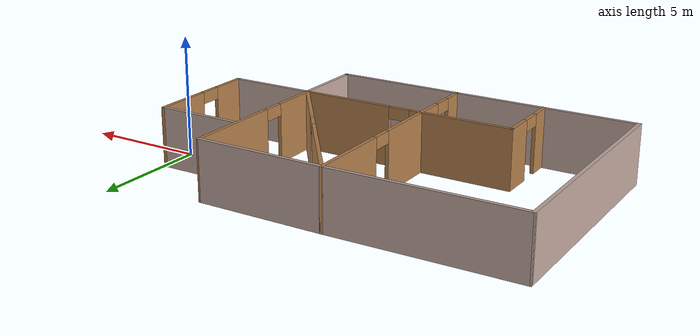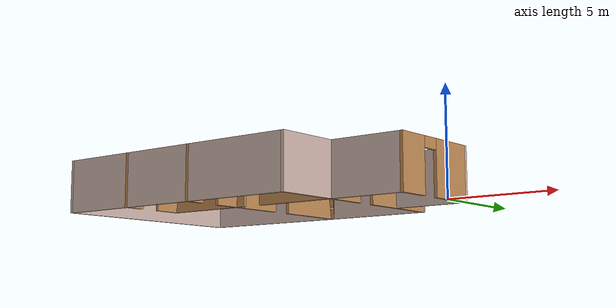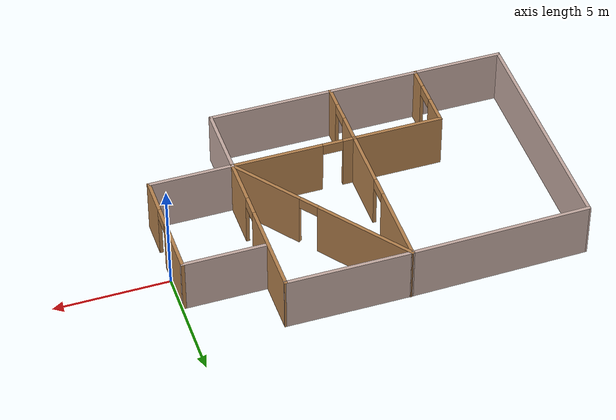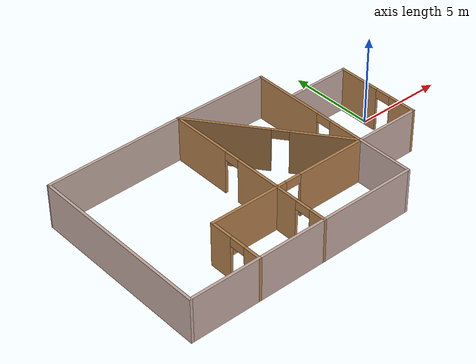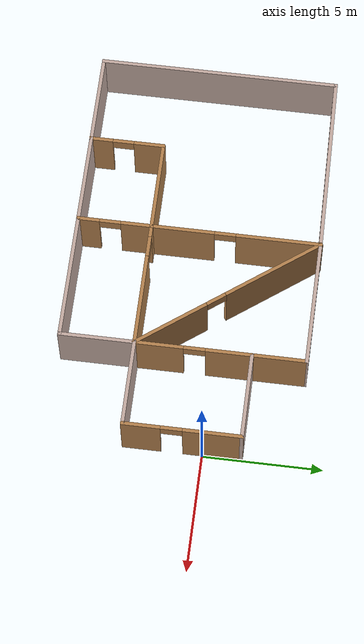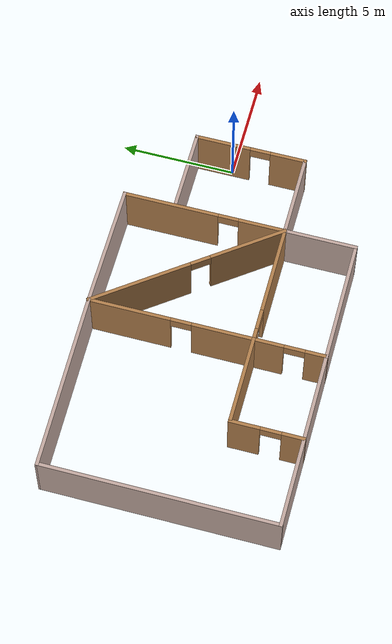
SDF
<?xml version='1.0'?>
<sdf version='1.6'>
  <model name='Project2Buidling'>
    <pose frame=''>-8.4286 -1.22093 0 0 -0 0</pose>
    <link name='Wall_0'>
      <collision name='Wall_0_Collision'>
        <geometry>
          <box>
            <size>10.25 0.15 2.5</size>
          </box>
        </geometry>
        <pose frame=''>0 0 1.25 0 -0 0</pose>
      </collision>
      <visual name='Wall_0_Visual'>
        <pose frame=''>0 0 1.25 0 -0 0</pose>
        <geometry>
          <box>
            <size>10.25 0.15 2.5</size>
          </box>
        </geometry>
        <material>
          <script>
            <uri>file://media/materials/scripts/gazebo.material</uri>
            <name>Gazebo/Grey</name>
          </script>
          <ambient>0.760784 0.662745 0.627451 1</ambient>
        </material>
        <meta>
          <layer>0</layer>
        </meta>
      </visual>
      <pose frame=''>-8.32441 -0.076505 0 0 0 -1.5708</pose>
    </link>
    <link name='Wall_1'>
      <collision name='Wall_1_Collision'>
        <geometry>
          <box>
            <size>4 0.15 2.5</size>
          </box>
        </geometry>
        <pose frame=''>0 0 1.25 0 -0 0</pose>
      </collision>
      <visual name='Wall_1_Visual'>
        <pose frame=''>0 0 1.25 0 -0 0</pose>
        <geometry>
          <box>
            <size>4 0.15 2.5</size>
          </box>
        </geometry>
        <material>
          <script>
            <uri>file://media/materials/scripts/gazebo.material</uri>
            <name>Gazebo/Grey</name>
          </script>
          <ambient>0.760784 0.662745 0.627451 1</ambient>
        </material>
        <meta>
          <layer>0</layer>
        </meta>
      </visual>
      <pose frame=''>-6.39941 -5.1265 0 0 -0 0</pose>
    </link>
    <link name='Wall_10'>
      <pose frame=''>-0.624406 1.535 0 0 -0 1.5708</pose>
      <visual name='Wall_10_Visual_0'>
        <pose frame=''>-2.26805 0 1.25 0 -0 0</pose>
        <geometry>
          <box>
            <size>2.7369 0.15 2.5</size>
          </box>
        </geometry>
        <material>
          <script>
            <uri>file://media/materials/scripts/gazebo.material</uri>
            <name>Gazebo/Wood</name>
          </script>
          <ambient>1 1 1 1</ambient>
        </material>
        <meta>
          <layer>0</layer>
        </meta>
      </visual>
      <collision name='Wall_10_Collision_0'>
        <geometry>
          <box>
            <size>2.7369 0.15 2.5</size>
          </box>
        </geometry>
        <pose frame=''>-2.26805 0 1.25 0 -0 0</pose>
      </collision>
      <visual name='Wall_10_Visual_1'>
        <pose frame=''>1.81845 0 1.25 0 -0 0</pose>
        <geometry>
          <box>
            <size>3.6361 0.15 2.5</size>
          </box>
        </geometry>
        <material>
          <script>
            <uri>file://media/materials/scripts/gazebo.material</uri>
            <name>Gazebo/Wood</name>
          </script>
          <ambient>1 1 1 1</ambient>
        </material>
        <meta>
          <layer>0</layer>
        </meta>
      </visual>
      <collision name='Wall_10_Collision_1'>
        <geometry>
          <box>
            <size>3.6361 0.15 2.5</size>
          </box>
        </geometry>
        <pose frame=''>1.81845 0 1.25 0 -0 0</pose>
      </collision>
      <visual name='Wall_10_Visual_2'>
        <pose frame=''>-0.449599 0 2.25 0 -0 0</pose>
        <geometry>
          <box>
            <size>0.9 0.15 0.5</size>
          </box>
        </geometry>
        <material>
          <script>
            <uri>file://media/materials/scripts/gazebo.material</uri>
            <name>Gazebo/Wood</name>
          </script>
          <ambient>1 1 1 1</ambient>
        </material>
        <meta>
          <layer>0</layer>
        </meta>
      </visual>
      <collision name='Wall_10_Collision_2'>
        <geometry>
          <box>
            <size>0.9 0.15 0.5</size>
          </box>
        </geometry>
        <pose frame=''>-0.449599 0 2.25 0 -0 0</pose>
      </collision>
    </link>
    <link name='Wall_13'>
      <collision name='Wall_13_Collision'>
        <geometry>
          <box>
            <size>7.85098 0.15 2.5</size>
          </box>
        </geometry>
        <pose frame=''>0 0 1.25 0 -0 0</pose>
      </collision>
      <visual name='Wall_13_Visual'>
        <pose frame=''>0 0 1.25 0 -0 0</pose>
        <geometry>
          <box>
            <size>7.85098 0.15 2.5</size>
          </box>
        </geometry>
        <material>
          <script>
            <uri>file://media/materials/scripts/gazebo.material</uri>
            <name>Gazebo/Grey</name>
          </script>
          <ambient>0.760784 0.662745 0.627451 1</ambient>
        </material>
        <meta>
          <layer>0</layer>
        </meta>
      </visual>
      <pose frame=''>-4.47441 5.035 0 0 -0 0.015973</pose>
    </link>
    <link name='Wall_15'>
      <pose frame=''>4.72559 1.5235 0 0 -0 1.5708</pose>
      <visual name='Wall_15_Visual_0'>
        <pose frame=''>-2.57137 0 1.25 0 -0 0</pose>
        <geometry>
          <box>
            <size>2.10726 0.15 2.5</size>
          </box>
        </geometry>
        <material>
          <script>
            <uri>file://media/materials/scripts/gazebo.material</uri>
            <name>Gazebo/Wood</name>
          </script>
          <ambient>0.760784 0.662745 0.627451 1</ambient>
        </material>
        <meta>
          <layer>0</layer>
        </meta>
      </visual>
      <collision name='Wall_15_Collision_0'>
        <geometry>
          <box>
            <size>2.10726 0.15 2.5</size>
          </box>
        </geometry>
        <pose frame=''>-2.57137 0 1.25 0 -0 0</pose>
      </collision>
      <visual name='Wall_15_Visual_1'>
        <pose frame=''>1.50363 0 1.25 0 -0 0</pose>
        <geometry>
          <box>
            <size>4.24274 0.15 2.5</size>
          </box>
        </geometry>
        <material>
          <script>
            <uri>file://media/materials/scripts/gazebo.material</uri>
            <name>Gazebo/Wood</name>
          </script>
          <ambient>0.760784 0.662745 0.627451 1</ambient>
        </material>
        <meta>
          <layer>0</layer>
        </meta>
      </visual>
      <collision name='Wall_15_Collision_1'>
        <geometry>
          <box>
            <size>4.24274 0.15 2.5</size>
          </box>
        </geometry>
        <pose frame=''>1.50363 0 1.25 0 -0 0</pose>
      </collision>
      <visual name='Wall_15_Visual_2'>
        <pose frame=''>-1.06774 0 2.25 0 -0 0</pose>
        <geometry>
          <box>
            <size>0.9 0.15 0.5</size>
          </box>
        </geometry>
        <material>
          <script>
            <uri>file://media/materials/scripts/gazebo.material</uri>
            <name>Gazebo/Wood</name>
          </script>
          <ambient>0.760784 0.662745 0.627451 1</ambient>
        </material>
        <meta>
          <layer>0</layer>
        </meta>
      </visual>
      <collision name='Wall_15_Collision_2'>
        <geometry>
          <box>
            <size>0.9 0.15 0.5</size>
          </box>
        </geometry>
        <pose frame=''>-1.06774 0 2.25 0 -0 0</pose>
      </collision>
    </link>
    <link name='Wall_16'>
      <collision name='Wall_16_Collision'>
        <geometry>
          <box>
            <size>5.50005 0.15 2.5</size>
          </box>
        </geometry>
        <pose frame=''>0 0 1.25 0 -0 0</pose>
      </collision>
      <visual name='Wall_16_Visual'>
        <pose frame=''>0 0 1.25 0 -0 0</pose>
        <geometry>
          <box>
            <size>5.50005 0.15 2.5</size>
          </box>
        </geometry>
        <material>
          <script>
            <uri>file://media/materials/scripts/gazebo.material</uri>
            <name>Gazebo/Grey</name>
          </script>
          <ambient>0.760784 0.662745 0.627451 1</ambient>
        </material>
        <meta>
          <layer>0</layer>
        </meta>
      </visual>
      <pose frame=''>2.05059 5.085 0 0 -0 3.13729</pose>
    </link>
    <link name='Wall_17'>
      <pose frame=''>2.05059 1.535 0 0 0 -0.926599</pose>
      <visual name='Wall_17_Visual_0'>
        <pose frame=''>-2.19887 0 1.25 0 -0 0</pose>
        <geometry>
          <box>
            <size>4.66066 0.15 2.5</size>
          </box>
        </geometry>
        <material>
          <script>
            <uri>file://media/materials/scripts/gazebo.material</uri>
            <name>Gazebo/Wood</name>
          </script>
          <ambient>1 1 1 1</ambient>
        </material>
        <meta>
          <layer>0</layer>
        </meta>
      </visual>
      <collision name='Wall_17_Collision_0'>
        <geometry>
          <box>
            <size>4.66066 0.15 2.5</size>
          </box>
        </geometry>
        <pose frame=''>-2.19887 0 1.25 0 -0 0</pose>
      </collision>
      <visual name='Wall_17_Visual_1'>
        <pose frame=''>2.78033 0 1.25 0 -0 0</pose>
        <geometry>
          <box>
            <size>3.49774 0.15 2.5</size>
          </box>
        </geometry>
        <material>
          <script>
            <uri>file://media/materials/scripts/gazebo.material</uri>
            <name>Gazebo/Wood</name>
          </script>
          <ambient>1 1 1 1</ambient>
        </material>
        <meta>
          <layer>0</layer>
        </meta>
      </visual>
      <collision name='Wall_17_Collision_1'>
        <geometry>
          <box>
            <size>3.49774 0.15 2.5</size>
          </box>
        </geometry>
        <pose frame=''>2.78033 0 1.25 0 -0 0</pose>
      </collision>
      <visual name='Wall_17_Visual_2'>
        <pose frame=''>0.581463 0 2.25 0 -0 0</pose>
        <geometry>
          <box>
            <size>0.9 0.15 0.5</size>
          </box>
        </geometry>
        <material>
          <script>
            <uri>file://media/materials/scripts/gazebo.material</uri>
            <name>Gazebo/Wood</name>
          </script>
          <ambient>1 1 1 1</ambient>
        </material>
        <meta>
          <layer>0</layer>
        </meta>
      </visual>
      <collision name='Wall_17_Collision_2'>
        <geometry>
          <box>
            <size>0.9 0.15 0.5</size>
          </box>
        </geometry>
        <pose frame=''>0.581463 0 2.25 0 -0 0</pose>
      </collision>
    </link>
    <link name='Wall_18'>
      <collision name='Wall_18_Collision'>
        <geometry>
          <box>
            <size>3.75 0.15 2.5</size>
          </box>
        </geometry>
        <pose frame=''>0 0 1.25 0 -0 0</pose>
      </collision>
      <visual name='Wall_18_Visual'>
        <pose frame=''>0 0 1.25 0 -0 0</pose>
        <geometry>
          <box>
            <size>3.75 0.15 2.5</size>
          </box>
        </geometry>
        <material>
          <script>
            <uri>file://media/materials/scripts/gazebo.material</uri>
            <name>Gazebo/Grey</name>
          </script>
          <ambient>0.760784 0.662745 0.627451 1</ambient>
        </material>
        <meta>
          <layer>0</layer>
        </meta>
      </visual>
      <pose frame=''>6.52559 -2.0265 0 0 -0 0</pose>
    </link>
    <link name='Wall_19'>
      <pose frame=''>8.32559 0.398495 0 0 -0 1.5708</pose>
      <visual name='Wall_19_Visual_0'>
        <pose frame=''>-1.69123 0 1.25 0 -0 0</pose>
        <geometry>
          <box>
            <size>1.61754 0.15 2.5</size>
          </box>
        </geometry>
        <material>
          <script>
            <uri>file://media/materials/scripts/gazebo.material</uri>
            <name>Gazebo/Wood</name>
          </script>
          <ambient>0.760784 0.662745 0.627451 1</ambient>
        </material>
        <meta>
          <layer>0</layer>
        </meta>
      </visual>
      <collision name='Wall_19_Collision_0'>
        <geometry>
          <box>
            <size>1.61754 0.15 2.5</size>
          </box>
        </geometry>
        <pose frame=''>-1.69123 0 1.25 0 -0 0</pose>
      </collision>
      <visual name='Wall_19_Visual_1'>
        <pose frame=''>1.25877 0 1.25 0 -0 0</pose>
        <geometry>
          <box>
            <size>2.48246 0.15 2.5</size>
          </box>
        </geometry>
        <material>
          <script>
            <uri>file://media/materials/scripts/gazebo.material</uri>
            <name>Gazebo/Wood</name>
          </script>
          <ambient>0.760784 0.662745 0.627451 1</ambient>
        </material>
        <meta>
          <layer>0</layer>
        </meta>
      </visual>
      <collision name='Wall_19_Collision_1'>
        <geometry>
          <box>
            <size>2.48246 0.15 2.5</size>
          </box>
        </geometry>
        <pose frame=''>1.25877 0 1.25 0 -0 0</pose>
      </collision>
      <visual name='Wall_19_Visual_2'>
        <pose frame=''>-0.432463 0 2.25 0 -0 0</pose>
        <geometry>
          <box>
            <size>0.9 0.15 0.5</size>
          </box>
        </geometry>
        <material>
          <script>
            <uri>file://media/materials/scripts/gazebo.material</uri>
            <name>Gazebo/Wood</name>
          </script>
          <ambient>0.760784 0.662745 0.627451 1</ambient>
        </material>
        <meta>
          <layer>0</layer>
        </meta>
      </visual>
      <collision name='Wall_19_Collision_2'>
        <geometry>
          <box>
            <size>0.9 0.15 0.5</size>
          </box>
        </geometry>
        <pose frame=''>-0.432463 0 2.25 0 -0 0</pose>
      </collision>
    </link>
    <link name='Wall_2'>
      <pose frame=''>-4.47441 -3.57651 0 0 -0 1.5708</pose>
      <visual name='Wall_2_Visual_0'>
        <pose frame=''>-1.12018 0 1.25 0 -0 0</pose>
        <geometry>
          <box>
            <size>1.00964 0.15 2.5</size>
          </box>
        </geometry>
        <material>
          <script>
            <uri>file://media/materials/scripts/gazebo.material</uri>
            <name>Gazebo/Wood</name>
          </script>
          <ambient>1 1 1 1</ambient>
        </material>
        <meta>
          <layer>0</layer>
        </meta>
      </visual>
      <collision name='Wall_2_Collision_0'>
        <geometry>
          <box>
            <size>1.00964 0.15 2.5</size>
          </box>
        </geometry>
        <pose frame=''>-1.12018 0 1.25 0 -0 0</pose>
      </collision>
      <visual name='Wall_2_Visual_1'>
        <pose frame=''>0.954822 0 1.25 0 -0 0</pose>
        <geometry>
          <box>
            <size>1.34036 0.15 2.5</size>
          </box>
        </geometry>
        <material>
          <script>
            <uri>file://media/materials/scripts/gazebo.material</uri>
            <name>Gazebo/Wood</name>
          </script>
          <ambient>1 1 1 1</ambient>
        </material>
        <meta>
          <layer>0</layer>
        </meta>
      </visual>
      <collision name='Wall_2_Collision_1'>
        <geometry>
          <box>
            <size>1.34036 0.15 2.5</size>
          </box>
        </geometry>
        <pose frame=''>0.954822 0 1.25 0 -0 0</pose>
      </collision>
      <visual name='Wall_2_Visual_2'>
        <pose frame=''>-0.165357 0 2.25 0 -0 0</pose>
        <geometry>
          <box>
            <size>0.9 0.15 0.5</size>
          </box>
        </geometry>
        <material>
          <script>
            <uri>file://media/materials/scripts/gazebo.material</uri>
            <name>Gazebo/Wood</name>
          </script>
          <ambient>1 1 1 1</ambient>
        </material>
        <meta>
          <layer>0</layer>
        </meta>
      </visual>
      <collision name='Wall_2_Collision_2'>
        <geometry>
          <box>
            <size>0.9 0.15 0.5</size>
          </box>
        </geometry>
        <pose frame=''>-0.165357 0 2.25 0 -0 0</pose>
      </collision>
    </link>
    <link name='Wall_20'>
      <collision name='Wall_20_Collision'>
        <geometry>
          <box>
            <size>3.75 0.15 2.5</size>
          </box>
        </geometry>
        <pose frame=''>0 0 1.25 0 -0 0</pose>
      </collision>
      <visual name='Wall_20_Visual'>
        <pose frame=''>0 0 1.25 0 -0 0</pose>
        <geometry>
          <box>
            <size>3.75 0.15 2.5</size>
          </box>
        </geometry>
        <material>
          <script>
            <uri>file://media/materials/scripts/gazebo.material</uri>
            <name>Gazebo/Grey</name>
          </script>
          <ambient>0.760784 0.662745 0.627451 1</ambient>
        </material>
        <meta>
          <layer>0</layer>
        </meta>
      </visual>
      <pose frame=''>6.52559 2.82349 0 0 -0 3.14159</pose>
    </link>
    <link name='Wall_3'>
      <collision name='Wall_3_Collision'>
        <geometry>
          <box>
            <size>4 0.15 2.5</size>
          </box>
        </geometry>
        <pose frame=''>0 0 1.25 0 -0 0</pose>
      </collision>
      <visual name='Wall_3_Visual'>
        <pose frame=''>0 0 1.25 0 -0 0</pose>
        <geometry>
          <box>
            <size>4 0.15 2.5</size>
          </box>
        </geometry>
        <material>
          <script>
            <uri>file://media/materials/scripts/gazebo.material</uri>
            <name>Gazebo/Wood</name>
          </script>
          <ambient>1 1 1 1</ambient>
        </material>
        <meta>
          <layer>0</layer>
        </meta>
      </visual>
      <pose frame=''>-2.54941 -2.0265 0 0 -0 0</pose>
    </link>
    <link name='Wall_4'>
      <pose frame=''>-0.624406 -3.57651 0 0 0 -1.5708</pose>
      <visual name='Wall_4_Visual_0'>
        <pose frame=''>-0.937332 0 1.25 0 -0 0</pose>
        <geometry>
          <box>
            <size>1.37534 0.15 2.5</size>
          </box>
        </geometry>
        <material>
          <script>
            <uri>file://media/materials/scripts/gazebo.material</uri>
            <name>Gazebo/Wood</name>
          </script>
          <ambient>1 1 1 1</ambient>
        </material>
        <meta>
          <layer>0</layer>
        </meta>
      </visual>
      <collision name='Wall_4_Collision_0'>
        <geometry>
          <box>
            <size>1.37534 0.15 2.5</size>
          </box>
        </geometry>
        <pose frame=''>-0.937332 0 1.25 0 -0 0</pose>
      </collision>
      <visual name='Wall_4_Visual_1'>
        <pose frame=''>1.13767 0 1.25 0 -0 0</pose>
        <geometry>
          <box>
            <size>0.974663 0.15 2.5</size>
          </box>
        </geometry>
        <material>
          <script>
            <uri>file://media/materials/scripts/gazebo.material</uri>
            <name>Gazebo/Wood</name>
          </script>
          <ambient>1 1 1 1</ambient>
        </material>
        <meta>
          <layer>0</layer>
        </meta>
      </visual>
      <collision name='Wall_4_Collision_1'>
        <geometry>
          <box>
            <size>0.974663 0.15 2.5</size>
          </box>
        </geometry>
        <pose frame=''>1.13767 0 1.25 0 -0 0</pose>
      </collision>
      <visual name='Wall_4_Visual_2'>
        <pose frame=''>0.200337 0 2.25 0 -0 0</pose>
        <geometry>
          <box>
            <size>0.9 0.15 0.5</size>
          </box>
        </geometry>
        <material>
          <script>
            <uri>file://media/materials/scripts/gazebo.material</uri>
            <name>Gazebo/Wood</name>
          </script>
          <ambient>1 1 1 1</ambient>
        </material>
        <meta>
          <layer>0</layer>
        </meta>
      </visual>
      <collision name='Wall_4_Collision_2'>
        <geometry>
          <box>
            <size>0.9 0.15 0.5</size>
          </box>
        </geometry>
        <pose frame=''>0.200337 0 2.25 0 -0 0</pose>
      </collision>
    </link>
    <link name='Wall_5'>
      <collision name='Wall_5_Collision'>
        <geometry>
          <box>
            <size>4 0.15 2.5</size>
          </box>
        </geometry>
        <pose frame=''>0 0 1.25 0 -0 0</pose>
      </collision>
      <visual name='Wall_5_Visual'>
        <pose frame=''>0 0 1.25 0 -0 0</pose>
        <geometry>
          <box>
            <size>4 0.15 2.5</size>
          </box>
        </geometry>
        <material>
          <script>
            <uri>file://media/materials/scripts/gazebo.material</uri>
            <name>Gazebo/Grey</name>
          </script>
          <ambient>0.760784 0.662745 0.627451 1</ambient>
        </material>
        <meta>
          <layer>0</layer>
        </meta>
      </visual>
      <pose frame=''>-2.54941 -5.1265 0 0 -0 3.14159</pose>
    </link>
    <link name='Wall_7'>
      <collision name='Wall_7_Collision'>
        <geometry>
          <box>
            <size>5.5 0.15 2.5</size>
          </box>
        </geometry>
        <pose frame=''>0 0 1.25 0 -0 0</pose>
      </collision>
      <visual name='Wall_7_Visual'>
        <pose frame=''>0 0 1.25 0 -0 0</pose>
        <geometry>
          <box>
            <size>5.5 0.15 2.5</size>
          </box>
        </geometry>
        <material>
          <script>
            <uri>file://media/materials/scripts/gazebo.material</uri>
            <name>Gazebo/Grey</name>
          </script>
          <ambient>0.760784 0.662745 0.627451 1</ambient>
        </material>
        <meta>
          <layer>0</layer>
        </meta>
      </visual>
      <pose frame=''>2.05059 -5.1265 0 0 -0 0</pose>
    </link>
    <link name='Wall_8'>
      <collision name='Wall_8_Collision'>
        <geometry>
          <box>
            <size>3.25 0.15 2.5</size>
          </box>
        </geometry>
        <pose frame=''>0 0 1.25 0 -0 0</pose>
      </collision>
      <visual name='Wall_8_Visual'>
        <pose frame=''>0 0 1.25 0 -0 0</pose>
        <geometry>
          <box>
            <size>3.25 0.15 2.5</size>
          </box>
        </geometry>
        <material>
          <script>
            <uri>file://media/materials/scripts/gazebo.material</uri>
            <name>Gazebo/Grey</name>
          </script>
          <ambient>0.760784 0.662745 0.627451 1</ambient>
        </material>
        <meta>
          <layer>0</layer>
        </meta>
      </visual>
      <pose frame=''>4.72559 -3.57651 0 0 -0 1.5708</pose>
    </link>
    <link name='Wall_9'>
      <pose frame=''>2.05059 -2.0265 0 0 -0 3.14159</pose>
      <visual name='Wall_9_Visual_0'>
        <pose frame=''>-0.741198 0 1.25 0 -0 0</pose>
        <geometry>
          <box>
            <size>4.0176 0.15 2.5</size>
          </box>
        </geometry>
        <material>
          <script>
            <uri>file://media/materials/scripts/gazebo.material</uri>
            <name>Gazebo/Wood</name>
          </script>
          <ambient>1 1 1 1</ambient>
        </material>
        <meta>
          <layer>0</layer>
        </meta>
      </visual>
      <collision name='Wall_9_Collision_0'>
        <geometry>
          <box>
            <size>4.0176 0.15 2.5</size>
          </box>
        </geometry>
        <pose frame=''>-0.741198 0 1.25 0 -0 0</pose>
      </collision>
      <visual name='Wall_9_Visual_1'>
        <pose frame=''>2.4588 0 1.25 0 -0 0</pose>
        <geometry>
          <box>
            <size>0.582395 0.15 2.5</size>
          </box>
        </geometry>
        <material>
          <script>
            <uri>file://media/materials/scripts/gazebo.material</uri>
            <name>Gazebo/Wood</name>
          </script>
          <ambient>1 1 1 1</ambient>
        </material>
        <meta>
          <layer>0</layer>
        </meta>
      </visual>
      <collision name='Wall_9_Collision_1'>
        <geometry>
          <box>
            <size>0.582395 0.15 2.5</size>
          </box>
        </geometry>
        <pose frame=''>2.4588 0 1.25 0 -0 0</pose>
      </collision>
      <visual name='Wall_9_Visual_2'>
        <pose frame=''>1.71761 0 2.25 0 -0 0</pose>
        <geometry>
          <box>
            <size>0.9 0.15 0.5</size>
          </box>
        </geometry>
        <material>
          <script>
            <uri>file://media/materials/scripts/gazebo.material</uri>
            <name>Gazebo/Wood</name>
          </script>
          <ambient>1 1 1 1</ambient>
        </material>
        <meta>
          <layer>0</layer>
        </meta>
      </visual>
      <collision name='Wall_9_Collision_2'>
        <geometry>
          <box>
            <size>0.9 0.15 0.5</size>
          </box>
        </geometry>
        <pose frame=''>1.71761 0 2.25 0 -0 0</pose>
      </collision>
    </link>
    <static>1</static>
  </model>
</sdf>
